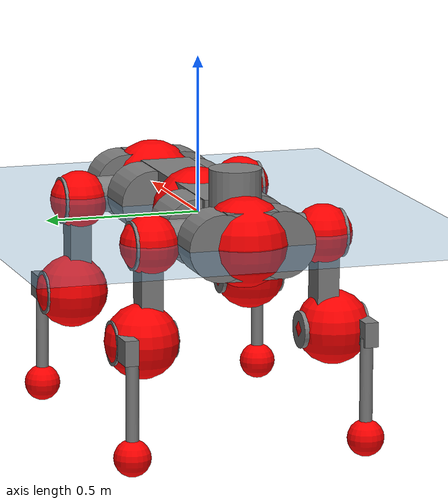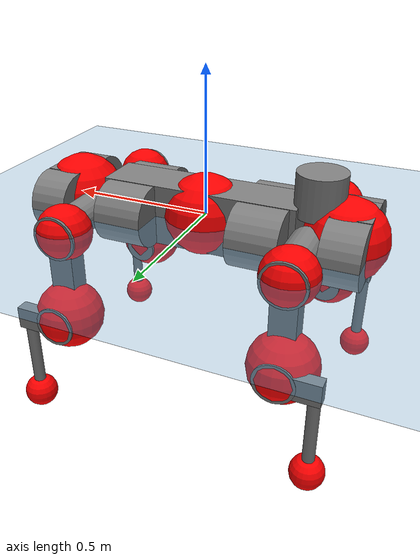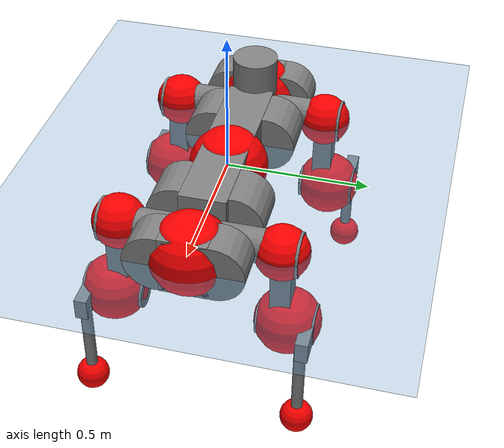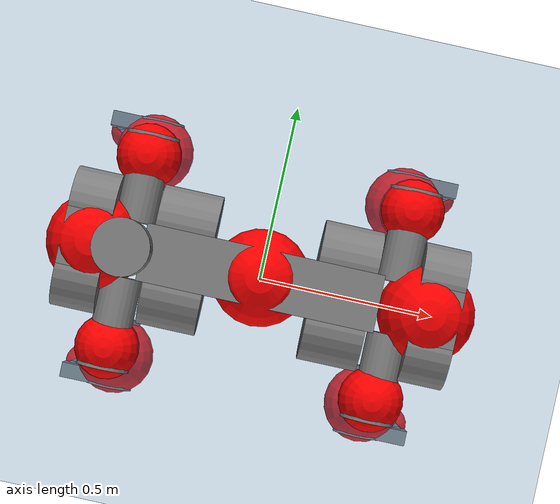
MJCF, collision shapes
<mujoco model="anymal_c">
  <compiler angle="radian" assetdir="assets" balanceinertia="true" inertiafromgeom="false"/>

  <option timestep="0.005" density="1.2" viscosity="2e-05"/>

  <size nkey="1"/>

  <visual>
    <quality shadowsize="8192"/>
    <map shadowclip="0.5"/>
  </visual>

  <default>
    <default class="/">
      <material specular="0" shininess="0.25"/>
      <geom contype="0" conaffinity="0" group="1" solref="-1000 -80"/>
      <site size="0.01 0.005 0.005" group="5"/>
      <general forcelimited="true" forcerange="-80 80" biastype="affine" gainprm="80" biasprm="0 -80 -2"/>
      <default class="anymal_c">
        <joint armature="0.01" damping="0.01" frictionloss="0.1"/>
        <default class="visual">
          <geom type="mesh" group="2"/>
          <default class="visual_zflip"/>
        </default>
        <default class="collision">
          <geom type="cylinder" group="3"/>
          <default class="foot">
            <geom size="0.03 0 0" type="sphere" condim="6" priority="1" friction="0.8 0.02 0.01" solimp="0.015 1 0.03"/>
          </default>
        </default>
      </default>
      <default class="reward_collision_sphere">
        <geom group="5" rgba="1 0 0 1"/>
      </default>
    </default>
  </default>

  <asset>
    <texture type="skybox" colorspace="auto" name="//unnamed_texture_0" builtin="gradient" rgb1="0.95 0.95 0.95" rgb2="0.95 0.95 0.95" width="100" height="600"/>
    <texture type="2d" colorspace="auto" name="texplane" builtin="checker" rgb1="0.345 0.575 0.748" rgb2="0.345 0.575 0.748" markrgb="1 1 1" width="512" height="512"/>
    <texture type="2d" colorspace="linear" name="base" file="base.png"/>
    <texture type="2d" colorspace="linear" name="top_shell" file="top_shell.png"/>
    <texture type="2d" colorspace="linear" name="bottom_shell" file="bottom_shell.png"/>
    <texture type="2d" colorspace="linear" name="remote" file="remote.png"/>
    <texture type="2d" colorspace="linear" name="hatch" file="hatch.png"/>
    <texture type="2d" colorspace="linear" name="handle" file="handle.png"/>
    <texture type="2d" colorspace="linear" name="face" file="face.png"/>
    <texture type="2d" colorspace="linear" name="battery" file="battery.png"/>
    <texture type="2d" colorspace="linear" name="lidar_cage" file="lidar_cage.png"/>
    <texture type="2d" colorspace="linear" name="depth_camera" file="depth_camera.png"/>
    <texture type="2d" colorspace="linear" name="wide_angle_camera" file="wide_angle_camera.png"/>
    <texture type="2d" colorspace="linear" name="lidar" file="lidar.png"/>
    <texture type="2d" colorspace="linear" name="drive" file="drive.png"/>
    <texture type="2d" colorspace="linear" name="hip_l" file="hip_l.png"/>
    <texture type="2d" colorspace="linear" name="shank_l" file="shank_l.png"/>
    <texture type="2d" colorspace="linear" name="foot" file="foot.png"/>
    <texture type="2d" colorspace="linear" name="thigh" file="thigh.png"/>
    <texture type="2d" colorspace="linear" name="shank_r" file="shank_r.png"/>
    <texture type="2d" colorspace="linear" name="hip_r" file="hip_r.png"/>
    <material name="MatPlane" class="/" texture="texplane" texuniform="true" texrepeat="2 2" specular="0.9" shininess="0.5"/>
    <material name="black_plastic" class="/" rgba="0.007 0.007 0.007 1"/>
    <material name="green" class="/" rgba="0.052 0.178 0.033 1"/>
    <material name="red" class="/" rgba="0.178 0.006 0.005 1"/>
    <material name="yellow" class="/" rgba="0.178 0.119 0.006 1"/>
    <material name="lwl" class="/" rgba="0.8 0.8 0.8 1"/>
    <material name="base" class="/" texture="base"/>
    <material name="top_shell" class="/" texture="top_shell"/>
    <material name="bottom_shell" class="/" texture="bottom_shell"/>
    <material name="hip_l" class="/" texture="hip_l"/>
    <material name="thigh" class="/" texture="thigh"/>
    <material name="shank_l" class="/" texture="shank_l"/>
    <material name="foot" class="/" texture="foot"/>
    <material name="hip_r" class="/" texture="hip_r"/>
    <material name="shank" class="/" texture="shank_r"/>
    <material name="hatch" class="/" texture="hatch"/>
    <material name="remote" class="/" texture="remote"/>
    <material name="handle" class="/" texture="handle"/>
    <material name="face" class="/" texture="face"/>
    <material name="depth_camera" class="/" texture="depth_camera"/>
    <material name="wide_angle_camera" class="/" texture="wide_angle_camera"/>
    <material name="battery" class="/" texture="battery"/>
    <material name="lidar_cage" class="/" texture="lidar_cage"/>
    <material name="lidar" class="/" texture="lidar"/>
    <material name="drive" class="/" texture="drive"/>
    <mesh name="base_0" class="/" file="base_0.obj"/>
    <mesh name="base_1" class="/" file="base_1.obj"/>
    <mesh name="base_2" class="/" file="base_2.obj"/>
    <mesh name="base_3" class="/" file="base_3.obj"/>
    <mesh name="base_4" class="/" file="base_4.obj"/>
    <mesh name="base_5" class="/" file="base_5.obj"/>
    <mesh name="top_shell" class="/" file="top_shell.obj"/>
    <mesh name="bottom_shell" class="/" file="bottom_shell.obj"/>
    <mesh name="remote" class="/" file="remote.obj"/>
    <mesh name="handle" class="/" file="handle.obj"/>
    <mesh name="face" class="/" file="face.obj"/>
    <mesh name="wide_angle_camera" class="/" file="wide_angle_camera.obj"/>
    <mesh name="depth_camera" class="/" file="depth_camera.obj"/>
    <mesh name="battery" class="/" file="battery.obj"/>
    <mesh name="lidar_cage" class="/" file="lidar_cage.obj"/>
    <mesh name="lidar" class="/" file="lidar.obj"/>
    <mesh name="drive" class="/" file="drive.obj"/>
    <mesh name="hip_l" class="/" file="hip_l.obj"/>
    <mesh name="thigh" class="/" file="thigh.obj"/>
    <mesh name="shank_l" class="/" file="shank_l.obj"/>
    <mesh name="foot" class="/" file="foot.obj"/>
    <mesh name="hip_r" class="/" file="hip_r.obj"/>
    <mesh name="hatch" class="/" file="hatch.obj"/>
    <mesh name="shank_r" class="/" file="shank_r.obj"/>
  </asset>

  <worldbody>
    <geom name="floor" class="/" size="100 100 0.125" type="plane" group="0" material="MatPlane"/>
    <light name="toplight_shadow" class="/" pos="0 0 5" dir="0.0990148 0.0990148 -0.990148" type="directional" ambient="0.04 0.04 0.04" diffuse="0.55 0.55 0.55" specular="0.12 0.12 0.12"/>
    <light name="toplight_fill" class="/" pos="0 0 5" dir="0.0990148 0.0990148 -0.990148" type="directional" castshadow="false" ambient="0.04 0.04 0.04" diffuse="0.3 0.3 0.3" specular="0.08 0.08 0.08"/>
    <body name="trunk" childclass="anymal_c" pos="0.000254448 0.00442195 0.00210164" quat="1 -7.77719e-05 5.72041e-05 6.74861e-06">
      <inertial pos="0.00349365 0.00514348 0.0489686" quat="0.493386 0.537072 0.479341 0.488218" mass="31.7586" diaginertia="0.943168 3.1097 0.294251"/>
      <joint name="//unnamed_joint_0" type="free" armature="0" damping="0" frictionloss="0"/>
      <geom name="//unnamed_geom_1" class="visual" material="green" mesh="base_0"/>
      <geom name="//unnamed_geom_2" class="visual" material="yellow" mesh="base_1"/>
      <geom name="//unnamed_geom_3" class="visual" material="red" mesh="base_2"/>
      <geom name="//unnamed_geom_4" class="visual" material="black_plastic" mesh="base_3"/>
      <geom name="//unnamed_geom_5" class="visual" material="lwl" mesh="base_4"/>
      <geom name="//unnamed_geom_6" class="visual" material="base" mesh="base_5"/>
      <geom name="trunk_1" class="collision" size="0.340877 0.0822805 0.105789" type="box"/>
      <geom name="trunk_2" class="collision" size="0.105789 0.0852191" pos="0.234569 0.0970856 0" quat="0.707107 0 0.707107 0"/>
      <geom name="trunk_3" class="collision" size="0.105789 0.0852191" pos="-0.234569 0.0970856 0" quat="0.707107 0 0.707107 0"/>
      <geom name="trunk_4" class="collision" size="0.105789 0.0852191" pos="0.234569 -0.0970856 0" quat="0.707107 0 0.707107 0"/>
      <geom name="trunk_5" class="collision" size="0.105789 0.0852191" pos="-0.234569 -0.0970856 0" quat="0.707107 0 0.707107 0"/>
      <geom name="//unnamed_geom_12" class="visual" material="top_shell" mesh="top_shell"/>
      <geom name="//unnamed_geom_13" class="visual" material="bottom_shell" mesh="bottom_shell"/>
      <geom name="//unnamed_geom_14" class="visual" material="remote" mesh="remote"/>
      <geom name="//unnamed_geom_15" class="visual" material="handle" mesh="handle"/>
      <geom name="//unnamed_geom_16" class="visual" pos="0.447029 0 0" quat="1 0 0 0" material="face" mesh="face"/>
      <geom name="trunk_6" class="collision" size="0.064649 0.0822805 0.105789" pos="0.506345 0 0" type="box"/>
      <geom name="//unnamed_geom_18" class="collision" size="0.105789 0.064649" pos="0.506345 0.0970856 0" quat="0.707107 0 0.707107 0"/>
      <geom name="//unnamed_geom_19" class="collision" size="0.105789 0.064649" pos="0.506345 -0.0970856 0" quat="0.707107 0 0.707107 0"/>
      <geom name="//unnamed_geom_20" class="visual" pos="0.497879 0 -0.0308444" quat="0.965926 0 0.258819 0" material="depth_camera" mesh="depth_camera"/>
      <geom name="//unnamed_geom_21" class="visual" pos="0.553259 0 0.0158816" material="wide_angle_camera" mesh="wide_angle_camera"/>
      <geom name="//unnamed_geom_22" class="visual_zflip" pos="-0.447029 0 0" quat="0 0 0 1" material="face" mesh="face"/>
      <geom name="trunk_7" class="collision" size="0.064649 0.0822805 0.105789" pos="-0.506345 0 0" quat="0 0 0 1" type="box"/>
      <geom name="//unnamed_geom_24" class="collision" size="0.105789 0.064649" pos="-0.506345 -0.0970856 0" quat="0 -0.707107 0 0.707107"/>
      <geom name="//unnamed_geom_25" class="collision" size="0.105789 0.064649" pos="-0.506345 0.0970856 0" quat="0 -0.707107 0 0.707107"/>
      <geom name="//unnamed_geom_26" class="visual" pos="-0.497879 0 -0.0308444" quat="0 -0.258819 0 0.965926" material="depth_camera" mesh="depth_camera"/>
      <geom name="//unnamed_geom_27" class="visual_zflip" pos="-0.553259 0 0.0158816" quat="0 0 0 1" material="wide_angle_camera" mesh="wide_angle_camera"/>
      <geom name="//unnamed_geom_28" class="visual" material="battery" mesh="battery"/>
      <geom name="//unnamed_geom_29" class="visual" pos="0 0.110092 0.0309526" quat="0.683013 -0.183013 0.183013 0.683013" material="depth_camera" mesh="depth_camera"/>
      <geom name="//unnamed_geom_30" class="visual" pos="0 -0.110092 0.0309526" quat="0.683013 0.183013 0.183013 -0.683013" material="depth_camera" mesh="depth_camera"/>
      <geom name="//unnamed_geom_31" class="visual" pos="-0.392566 0 0.0779756" quat="1 0 0 0" material="lidar_cage" mesh="lidar_cage"/>
      <geom name="trunk_8" class="collision" size="0.0822805 0.0705262" pos="-0.392566 0 0.141629"/>
      <geom name="//unnamed_geom_33" class="visual" pos="-0.392566 0.000121186 0.150859" quat="0.707107 0 0 -0.707107" material="lidar" mesh="lidar"/>
      <geom name="//unnamed_geom_34" class="visual" pos="0.323436 0.144126 5.62431e-09" quat="0.258819 0.965926 0 0" material="drive" mesh="drive"/>
      <geom name="//unnamed_geom_35" class="visual" pos="0.323436 -0.144126 -5.62431e-09" quat="0.258819 -0.965926 0 0" material="drive" mesh="drive"/>
      <geom name="//unnamed_geom_36" class="visual" pos="-0.323436 0.144126 -5.62431e-09" quat="0 0 0.965926 -0.258819" material="drive" mesh="drive"/>
      <geom name="//unnamed_geom_37" class="visual" pos="-0.323436 -0.144126 5.62431e-09" quat="0 0 -0.965926 -0.258819" material="drive" mesh="drive"/>
      <geom name="//unnamed_geom_38" class="visual" pos="0.125103 0 0.0774452" quat="1 0 0 0" material="hatch" mesh="hatch"/>
      <geom name="//unnamed_geom_39" class="reward_collision_sphere" size="0.141052"/>
      <geom name="//unnamed_geom_40" class="reward_collision_sphere" size="0.141052" pos="0.485315 0 0"/>
      <geom name="//unnamed_geom_41" class="reward_collision_sphere" size="0.141052" pos="-0.485315 0 0"/>
      <site name="imu" pos="0.247803 0.00203745 0.0711314" size="0.0117544"/>
      <camera name="track" pos="0 -2.77388 0" quat="0.707107 0.707107 0 0" mode="trackcom"/>
      <camera name="ego_camera" pos="0.485315 0 -0.0424357" quat="-0.5 -0.5 0.5 0.5"/>
      <body name="LF_HIP" pos="0.320545 0.135759 -0.00645581" quat="0.258476 0.966015 0.000492577 0.00231888">
        <inertial pos="0.0591503 -0.0208296 -0.00990012" quat="-0.129767 0.715883 -0.13942 0.67174" mass="4.68752" diaginertia="0.00853722 0.0272533 0.00433428"/>
        <joint name="LF_HAA" pos="0 0 0" axis="0.999995 0.000442206 -0.00312313" range="-0.895711 0.4599" armature="0.0108941" damping="0.0289808" frictionloss="0.099371"/>
        <geom name="//unnamed_geom_42" class="visual" pos="0 0.000330853 -5.43423e-05" quat="0.258819 -0.965926 0 0" material="hip_l" mesh="hip_l"/>
        <geom name="//unnamed_geom_43" class="visual" pos="0.0646008 -0.0822232 -0.0450599" quat="0.183013 -0.683013 0.683013 0.183013" material="drive" mesh="drive"/>
        <geom name="//unnamed_geom_44" class="collision" size="0.0587718 0.0822805" pos="0.0646008 -0.0165875 -0.00732547" quat="-0.353553 -0.612372 0.612372 -0.353553"/>
        <body name="LF_THIGH" pos="0.0647534 -0.109274 -0.0455053" quat="0.182831 -0.682298 0.683342 0.184622">
          <inertial pos="0.0297021 -0.00223524 -0.258646" quat="0.993038 -0.0291646 -0.0894587 0.0708638" mass="4.98071" diaginertia="0.0462226 0.155359 0.00567361"/>
          <joint name="LF_HFE" pos="0 0 0" axis="0.999729 0.0167779 -0.0161127" stiffness="0.0204733" range="-3.15951 3.00132" armature="0.00881755" damping="0.0226157" frictionloss="0.118563"/>
          <geom name="//unnamed_geom_45" class="visual" pos="-0.00613714 -9.67069e-06 0" quat="0.707107 0 0 -0.707107" material="thigh" mesh="thigh"/>
          <geom name="//unnamed_geom_46" class="collision" size="0.0764034 0.0470175" pos="0.0431391 0 0" quat="0.5 0.5 -0.5 -0.5"/>
          <geom name="//unnamed_geom_47" class="collision" size="0.0440789 0.0352631 0.166106" pos="0.0323543 0 -0.149919" quat="0.707107 0 0 -0.707107" type="box"/>
          <geom name="//unnamed_geom_48" class="visual" pos="0.108171 0 -0.302355" quat="1 0 0 0" material="drive" mesh="drive"/>
          <geom name="//unnamed_geom_49" class="collision" size="0.0587718 0.0822805" pos="0.0326779 0 -0.302355" quat="0.707107 0 0.707107 0"/>
          <geom name="//unnamed_geom_50" class="reward_collision_sphere" size="0.0940349" pos="0.026962 0 0"/>
          <body name="LF_SHANK" pos="0.107373 0.00674299 -0.302739" quat="1 -0.000218756 -0.000194921 -0.00068349">
            <inertial pos="0.00305803 -0.0846648 -0.0775187" quat="0.992872 -0.116645 -2.13305e-05 -0.0244882" mass="0.927982" diaginertia="0.0155787 0.0429879 0.00164417"/>
            <joint name="LF_KFE" pos="0 0 0" axis="0.99995 0.00805621 -0.00585963" range="-2.98336 3.14492" armature="0.0132917" damping="0.0133009" frictionloss="0.121555"/>
            <geom name="//unnamed_geom_51" class="visual" pos="-0.00200119 -0.0106704 0" quat="0.707107 0 0 -0.707107" material="shank_l" mesh="shank_l"/>
            <geom name="LF_kfe_act" class="collision" size="0.0705262 0.0235087" pos="0.0215696 0 0" quat="0.5 0.5 -0.5 -0.5"/>
            <geom name="//unnamed_geom_53" class="collision" size="0.0675864 0.039671 0.0223333" pos="0.0215696 -0.0797475 0" quat="0.5 0.5 -0.5 -0.5" type="box"/>
            <geom name="//unnamed_geom_54" class="visual" pos="0.0140746 -0.12542 -0.35855" quat="0.382683 0 0 -0.92388" material="foot" mesh="foot"/>
            <geom name="LF_calf" class="collision" size="0.0205701 0.166033" pos="0.0140741 -0.121981 -0.179275" quat="0.707107 0 0 -0.707107"/>
            <geom name="LF_foot" class="foot" size="0.0301345" pos="0.0140741 -0.121981 -0.33468" quat="0.707107 0 0 -0.707107"/>
            <geom name="//unnamed_geom_57" class="reward_collision_sphere" size="0.117544" pos="-0.0539239 0 0"/>
            <geom name="//unnamed_geom_58" class="reward_collision_sphere" size="0.0587718" pos="0.0140741 -0.121981 -0.33468"/>
            <site name="LF_foot" class="foot" pos="0.0140741 -0.121981 -0.33468" quat="0.707107 0 0 -0.707107" size="0.0117544"/>
          </body>
        </body>
      </body>
      <body name="RF_HIP" pos="0.325799 -0.142677 0.000242832" quat="0.258661 -0.965968 0.000168418 0.000128373">
        <inertial pos="0.060927 0.0230972 -0.00722855" quat="0.128496 0.683936 0.125132 0.707151" mass="4.97158" diaginertia="0.00867078 0.0287663 0.00426439"/>
        <joint name="RF_HAA" pos="0 0 0" axis="0.999898 -0.0131752 0.00554439" range="-0.484549 0.702473" armature="0.0123492" damping="0.0152842" frictionloss="0.119971"/>
        <geom name="//unnamed_geom_59" class="visual" pos="0 -0.00033085 -5.43421e-05" quat="0.258819 0.965926 0 0" material="hip_r" mesh="hip_r"/>
        <geom name="//unnamed_geom_60" class="visual" pos="0.0646008 0.0822232 -0.0450599" quat="0.183013 0.683013 0.683013 -0.183013" material="drive" mesh="drive"/>
        <geom name="//unnamed_geom_61" class="collision" size="0.0587718 0.0822805" pos="0.0646008 0.0165875 -0.00732547" quat="-0.353553 0.612372 0.612372 0.353553"/>
        <body name="RF_THIGH" pos="0.0578152 0.0921102 -0.0462917" quat="0.183302 0.682785 0.683184 -0.182934">
          <inertial pos="0.0343859 0.00839207 -0.262193" quat="0.991406 -0.00277698 -0.0861747 0.0983902" mass="4.45515" diaginertia="0.0423248 0.143042 0.00525553"/>
          <joint name="RF_HFE" pos="0 0 0" axis="0.999898 -0.0123262 0.00720118" stiffness="0.00165286" range="-2.99776 3.13436" armature="0.013056" damping="0.0171143" frictionloss="0.117538"/>
          <geom name="//unnamed_geom_62" class="visual" pos="-0.00613714 -9.67069e-06 0" quat="0.707107 0 0 -0.707107" material="thigh" mesh="thigh"/>
          <geom name="//unnamed_geom_63" class="collision" size="0.0764034 0.0470175" pos="0.0431391 0 0" quat="0.5 0.5 0.5 0.5"/>
          <geom name="//unnamed_geom_64" class="collision" size="0.0440789 0.0352631 0.166106" pos="0.0323543 0 -0.149919" quat="0.707107 0 0 0.707107" type="box"/>
          <geom name="//unnamed_geom_65" class="visual" pos="0.108171 0 -0.302355" quat="1 0 0 0" material="drive" mesh="drive"/>
          <geom name="//unnamed_geom_66" class="collision" size="0.0587718 0.0822805" pos="0.0326779 0 -0.302355" quat="0.707107 0 0.707107 0"/>
          <geom name="//unnamed_geom_67" class="reward_collision_sphere" size="0.0940349" pos="0.026962 0 0"/>
          <body name="RF_SHANK" pos="0.115307 0.00308577 -0.299887" quat="0.999996 -0.00146126 -0.000611178 0.00237139">
            <inertial pos="0.00610128 0.0843815 -0.0888171" quat="0.991868 0.125472 0.00480539 0.0207605" mass="0.983968" diaginertia="0.015183 0.0472191 0.00152352"/>
            <joint name="RF_KFE" pos="0 0 0" axis="0.999195 0.00844165 0.0392164" range="-3.09057 3.13682" armature="0.00795781" damping="0" frictionloss="0.1503"/>
            <geom name="//unnamed_geom_68" class="visual" pos="-0.00200117 0.0106704 0" quat="0.707107 0 0 0.707107" material="shank" mesh="shank_r"/>
            <geom name="RF_kfe_act" class="collision" size="0.0705262 0.0235087" pos="0.0215696 0 0" quat="0.5 0.5 0.5 0.5"/>
            <geom name="//unnamed_geom_70" class="collision" size="0.0675864 0.039671 0.0223333" pos="0.0215696 0.0797475 0" quat="0.5 0.5 0.5 0.5" type="box"/>
            <geom name="//unnamed_geom_71" class="visual" pos="0.0140737 0.12542 -0.35855" quat="0.382683 0 0 0.92388" material="foot" mesh="foot"/>
            <geom name="RF_calf" class="collision" size="0.0205701 0.166033" pos="0.0140741 0.121981 -0.179275" quat="0.707107 0 0 0.707107"/>
            <geom name="RF_foot" class="foot" size="0.033397" pos="0.0140741 0.121981 -0.33468" quat="0.707107 0 0 0.707107"/>
            <geom name="//unnamed_geom_74" class="reward_collision_sphere" size="0.117544" pos="-0.0539239 0 0"/>
            <geom name="//unnamed_geom_75" class="reward_collision_sphere" size="0.0587718" pos="0.0140741 0.121981 -0.33468"/>
            <site name="RF_foot" class="foot" pos="0.0140741 0.121981 -0.33468" quat="0.707107 0 0 0.707107" size="0.0117544"/>
          </body>
        </body>
      </body>
      <body name="LH_HIP" pos="-0.320171 0.143189 0.0040593" quat="0.000283039 -0.000163868 0.965941 -0.258762">
        <inertial pos="0.0615068 0.0262875 -0.0104774" quat="0.13411 0.682754 0.127398 0.706846" mass="4.55216" diaginertia="0.00845052 0.025148 0.00440438"/>
        <joint name="LH_HAA" pos="0 0 0" axis="0.999986 0.00319709 0.00411417" range="-0.46146 0.72599" armature="0.0111754" damping="0.0223095" frictionloss="0.12848"/>
        <geom name="//unnamed_geom_76" class="visual" pos="0 -0.00033085 -5.43421e-05" quat="-0.258819 -0.965926 0 0" material="hip_r" mesh="hip_r"/>
        <geom name="//unnamed_geom_77" class="visual" pos="0.0646008 0.0822232 -0.0450599" quat="0.183013 0.683013 0.683013 -0.183013" material="drive" mesh="drive"/>
        <geom name="//unnamed_geom_78" class="collision" size="0.0587718 0.0822805" pos="0.0646008 0.0165875 -0.00732547" quat="-0.353553 0.612372 0.612372 0.353553"/>
        <body name="LH_THIGH" pos="0.0670232 0.0970548 -0.0371272" quat="0.182149 0.682832 0.683422 -0.183021">
          <inertial pos="0.0333296 -0.00237963 -0.253305" quat="0.993066 -0.00509544 -0.0714608 0.0932091" mass="4.45524" diaginertia="0.043519 0.153098 0.00548637"/>
          <joint name="LH_HFE" pos="0 0 0" axis="1 0.000521748 0.000599519" range="-3.05249 3.08993" armature="0.0117173" damping="0.0341093" frictionloss="0.105051"/>
          <geom name="//unnamed_geom_79" class="visual" pos="-0.00613714 -9.67069e-06 0" quat="0.707107 0 0 -0.707107" material="thigh" mesh="thigh"/>
          <geom name="//unnamed_geom_80" class="collision" size="0.0764034 0.0470175" pos="0.0431391 0 0" quat="0.5 0.5 -0.5 -0.5"/>
          <geom name="//unnamed_geom_81" class="collision" size="0.0440789 0.0352631 0.166106" pos="0.0323543 0 -0.149919" quat="0.707107 0 0 -0.707107" type="box"/>
          <geom name="//unnamed_geom_82" class="visual" pos="0.108171 0 -0.302355" quat="1 0 0 0" material="drive" mesh="drive"/>
          <geom name="//unnamed_geom_83" class="collision" size="0.0587718 0.0822805" pos="0.0326779 0 -0.302355" quat="0.707107 0 0.707107 0"/>
          <geom name="//unnamed_geom_84" class="reward_collision_sphere" size="0.0940349" pos="0.026962 0 0"/>
          <body name="LH_SHANK" pos="0.110501 0.00859809 -0.299898" quat="1 0.000163996 -0.000764155 0.000187909">
            <inertial pos="0.00381779 0.0846709 -0.0878631" quat="0.992575 0.116966 -0.00570242 0.0328893" mass="0.900103" diaginertia="0.0133508 0.0449952 0.00144855"/>
            <joint name="LH_KFE" pos="0 0 0" axis="0.999875 -0.0134376 -0.00839003" range="-3.30335 3.22429" armature="0.0124157" damping="0.0141975" frictionloss="0.11274"/>
            <geom name="//unnamed_geom_85" class="visual" pos="-0.00200117 0.0106704 0" quat="-0.707107 0 0 -0.707107" material="shank" mesh="shank_r"/>
            <geom name="LH_kfe_act" class="collision" size="0.0705262 0.0235087" pos="0.0215696 0 0" quat="0.5 0.5 -0.5 -0.5"/>
            <geom name="//unnamed_geom_87" class="collision" size="0.0675864 0.039671 0.0223333" pos="0.0215696 0.0797475 0" quat="0.5 0.5 -0.5 -0.5" type="box"/>
            <geom name="//unnamed_geom_88" class="visual" pos="0.0140737 0.12542 -0.35855" quat="-0.382683 0 0 -0.92388" material="foot" mesh="foot"/>
            <geom name="LH_calf" class="collision" size="0.0205701 0.166033" pos="0.0140741 0.121981 -0.179275" quat="0.707107 0 0 -0.707107"/>
            <geom name="LH_foot" class="foot" size="0.0357058" pos="0.0140741 0.121981 -0.33468" quat="0.707107 0 0 -0.707107"/>
            <geom name="//unnamed_geom_91" class="reward_collision_sphere" size="0.117544" pos="-0.0539239 0 0"/>
            <geom name="//unnamed_geom_92" class="reward_collision_sphere" size="0.0587718" pos="0.0140741 0.121981 -0.33468"/>
            <site name="LH_foot" class="foot" pos="0.0140741 0.121981 -0.33468" quat="0.707107 0 0 -0.707107" size="0.0117544"/>
          </body>
        </body>
      </body>
      <body name="RH_HIP" pos="-0.322493 -0.147839 -0.000675423" quat="-0.00235217 0.00115455 -0.966145 -0.257986">
        <inertial pos="0.0623481 -0.0267295 -0.00591193" quat="-0.132955 0.707994 -0.130799 0.681145" mass="4.49473" diaginertia="0.00790314 0.0246692 0.00394597"/>
        <joint name="RH_HAA" pos="0 0 0" axis="0.999544 0.0264991 0.0144507" range="-0.766853 0.625316" armature="0.0119331" damping="0.00792392" frictionloss="0.130192"/>
        <geom name="//unnamed_geom_93" class="visual" pos="0 0.000330853 -5.43423e-05" quat="-0.258819 0.965926 0 0" material="hip_l" mesh="hip_l"/>
        <geom name="//unnamed_geom_94" class="visual" pos="0.0646008 -0.0822232 -0.0450599" quat="-0.183013 0.683013 -0.683013 -0.183013" material="drive" mesh="drive"/>
        <geom name="//unnamed_geom_95" class="collision" size="0.0587718 0.0822805" pos="0.0646008 -0.0165875 -0.00732547" quat="0.353553 0.612372 -0.612372 0.353553"/>
        <body name="RH_THIGH" pos="0.0660962 -0.10449 -0.0453609" quat="-0.183481 0.680801 -0.685237 -0.182468">
          <inertial pos="0.0330195 0.00657323 -0.262855" quat="0.992206 -0.00726983 -0.0845783 0.0912169" mass="5.23235" diaginertia="0.0465542 0.160548 0.00578398"/>
          <joint name="RH_HFE" pos="0 0 0" axis="0.999411 0.0262846 -0.0220548" range="-3.09844 3.1046" armature="0.01077" damping="0.0120418" frictionloss="0.128996"/>
          <geom name="//unnamed_geom_96" class="visual" pos="-0.00613714 -9.67069e-06 0" quat="0.707107 0 0 -0.707107" material="thigh" mesh="thigh"/>
          <geom name="//unnamed_geom_97" class="collision" size="0.0764034 0.0470175" pos="0.0431391 0 0" quat="0.5 0.5 0.5 0.5"/>
          <geom name="//unnamed_geom_98" class="collision" size="0.0440789 0.0352631 0.166106" pos="0.0323543 0 -0.149919" quat="0.707107 0 0 0.707107" type="box"/>
          <geom name="//unnamed_geom_99" class="visual" pos="0.108171 0 -0.302355" quat="1 0 0 0" material="drive" mesh="drive"/>
          <geom name="//unnamed_geom_100" class="collision" size="0.0587718 0.0822805" pos="0.0326779 0 -0.302355" quat="0.707107 0 0.707107 0"/>
          <geom name="//unnamed_geom_101" class="reward_collision_sphere" size="0.0940349" pos="0.026962 0 0"/>
          <body name="RH_SHANK" pos="0.117688 0.0021176 -0.300526" quat="1 7.64492e-05 -0.000239202 -0.000286063">
            <inertial pos="-0.00292783 -0.0853483 -0.086621" quat="0.992951 -0.115832 -0.000947544 -0.0251201" mass="0.939067" diaginertia="0.0136955 0.0471565 0.00154819"/>
            <joint name="RH_KFE" pos="0 0 0" axis="0.999382 0.0305498 -0.0173863" stiffness="0.0066233" range="-3.0308 3.00117" armature="0.0156795" damping="0.00993067" frictionloss="0.120266"/>
            <geom name="//unnamed_geom_102" class="visual" pos="-0.00200119 -0.0106704 0" quat="0.707107 0 0 -0.707107" material="shank_l" mesh="shank_l"/>
            <geom name="RH_kfe_act" class="collision" size="0.0705262 0.0235087" pos="0.0215696 0 0" quat="0.5 0.5 0.5 0.5"/>
            <geom name="//unnamed_geom_104" class="collision" size="0.0675864 0.039671 0.0223333" pos="0.0215696 -0.0797475 0" quat="0.5 0.5 0.5 0.5" type="box"/>
            <geom name="//unnamed_geom_105" class="visual" pos="0.0140746 -0.12542 -0.35855" quat="0.382683 0 0 -0.92388" material="foot" mesh="foot"/>
            <geom name="RH_calf" class="collision" size="0.0205701 0.166033" pos="0.0140741 -0.121981 -0.179275" quat="0.707107 0 0 0.707107"/>
            <geom name="RH_foot" class="foot" size="0.036825" pos="0.0140741 -0.121981 -0.33468" quat="0.707107 0 0 0.707107"/>
            <geom name="//unnamed_geom_108" class="reward_collision_sphere" size="0.117544" pos="-0.0539239 0 0"/>
            <geom name="//unnamed_geom_109" class="reward_collision_sphere" size="0.0587718" pos="0.0140741 -0.121981 -0.33468"/>
            <site name="RH_foot" class="foot" pos="0.0140741 -0.121981 -0.33468" quat="0.707107 0 0 0.707107" size="0.0117544"/>
          </body>
        </body>
      </body>
    </body>
  </worldbody>

  <contact>
    <pair class="/" geom1="floor" geom2="LF_foot" name="//unnamed_contact_0"/>
    <pair class="/" geom1="floor" geom2="RF_foot" name="//unnamed_contact_1"/>
    <pair class="/" geom1="floor" geom2="LH_foot" name="//unnamed_contact_2"/>
    <pair class="/" geom1="floor" geom2="RH_foot" name="//unnamed_contact_3"/>
  </contact>

  <actuator>
    <general name="LF_HAA" class="/" joint="LF_HAA" forcerange="-63.3638 63.3638" gainprm="77.8532" biasprm="0 -77.8532 -2.36682"/>
    <general name="LF_HFE" class="/" joint="LF_HFE" forcerange="-104.746 104.746" gainprm="77.8532" biasprm="0 -77.8532 -2.36682"/>
    <general name="LF_KFE" class="/" joint="LF_KFE" forcerange="-90.6333 90.6333" gainprm="77.8532" biasprm="0 -77.8532 -2.36682"/>
    <general name="RF_HAA" class="/" joint="RF_HAA" forcerange="-69.3255 69.3255" gainprm="77.8532" biasprm="0 -77.8532 -2.36682"/>
    <general name="RF_HFE" class="/" joint="RF_HFE" forcerange="-69.3976 69.3976" gainprm="77.8532" biasprm="0 -77.8532 -2.36682"/>
    <general name="RF_KFE" class="/" joint="RF_KFE" forcerange="-83.5505 83.5505" gainprm="77.8532" biasprm="0 -77.8532 -2.36682"/>
    <general name="LH_HAA" class="/" joint="LH_HAA" forcerange="-89.6748 89.6748" gainprm="77.8532" biasprm="0 -77.8532 -2.36682"/>
    <general name="LH_HFE" class="/" joint="LH_HFE" forcerange="-103.535 103.535" gainprm="77.8532" biasprm="0 -77.8532 -2.36682"/>
    <general name="LH_KFE" class="/" joint="LH_KFE" forcerange="-101.462 101.462" gainprm="77.8532" biasprm="0 -77.8532 -2.36682"/>
    <general name="RH_HAA" class="/" joint="RH_HAA" forcerange="-121.575 121.575" gainprm="77.8532" biasprm="0 -77.8532 -2.36682"/>
    <general name="RH_HFE" class="/" joint="RH_HFE" forcerange="-87.7402 87.7402" gainprm="77.8532" biasprm="0 -77.8532 -2.36682"/>
    <general name="RH_KFE" class="/" joint="RH_KFE" forcerange="-94.9663 94.9663" gainprm="77.8532" biasprm="0 -77.8532 -2.36682"/>
  </actuator>

  <sensor>
    <gyro site="imu" name="imu_angular_velocity"/>
    <velocimeter site="imu" name="imu_linear_velocity"/>
    <framelinvel objtype="site" objname="LF_foot" name="LF_foot_global_linear_velocity"/>
    <framelinvel objtype="site" objname="RF_foot" name="RF_foot_global_linear_velocity"/>
    <framelinvel objtype="site" objname="LH_foot" name="LH_foot_global_linear_velocity"/>
    <framelinvel objtype="site" objname="RH_foot" name="RH_foot_global_linear_velocity"/>
  </sensor>

  <keyframe>
    <key name="home" qpos="0 0 0.55 1 0 0 0 0 0.4 -0.8 0 -0.4 0.8 0 -0.4 0.8 0 0.4 -0.8"/>
  </keyframe>
</mujoco>
